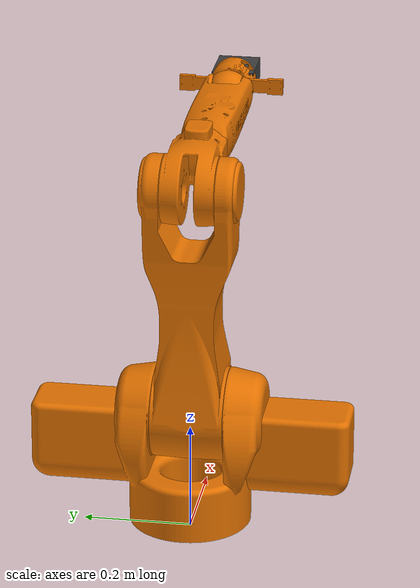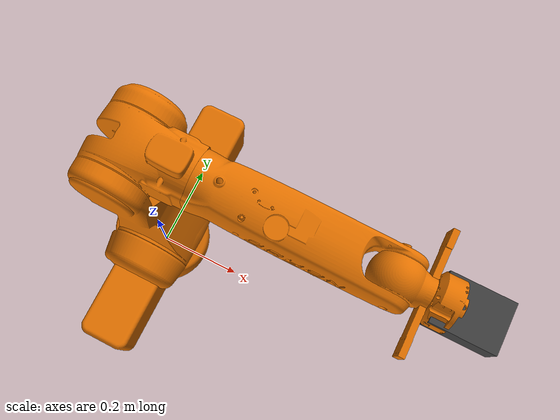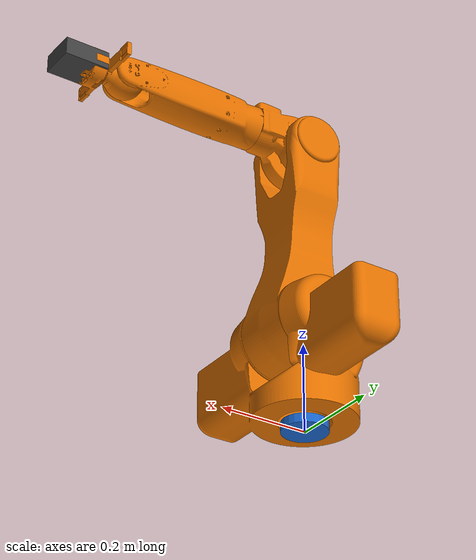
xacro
<?xml version="1.0"?>
<robot xmlns:xacro="http://www.ros.org/wiki/xacro" name="neuroneimitationcarote">
    <xacro:arg name="initial_positions_file" default="initial_positions.yaml" />

    <!-- Import neuroneimitationcarote urdf file -->
    <xacro:include filename="$(find neuroneimitationcarote_description)/urdf/robot.urdf.xacro" />

    <!-- Import control_xacro -->
    <xacro:include filename="neuroneimitationcarote.ros2_control.xacro" />

    <xacro:neuroneimitationcarote_ros2_control name="FakeSystem" initial_positions_file="$(arg initial_positions_file)"/>

</robot>

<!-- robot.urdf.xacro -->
<robot name="neuroneimitationcarote" xmlns:xacro="http://www.ros.org/wiki/xacro">

  <material name="dark_grey">
    <color rgba="0.25 0.25 0.25 1.0"/>
  </material>
  <material name="orange">
    <color rgba="0.9 0.45 0.0 1.0"/>
  </material>
  <material name="blue">
    <color rgba="0.1 0.4 0.8 1.0"/>
  </material>

<!-- Dummy world link requis par KDL -->
<link name="world"/>
<joint name="world_to_base" type="fixed">
  <parent link="world"/>
  <child  link="base_link"/>
  <origin xyz="0 0 0" rpy="0 0 0"/>
</joint>

  <!-- BASE_LINK -->
  <link name="base_link">
    <visual>
      <origin xyz="0 0 0.01" rpy="0 0 0"/>
      <geometry><cylinder radius="0.05" length="0.02"/></geometry>
      <material name="blue"/>
    </visual>
    <collision>
      <origin xyz="0 0 0.01" rpy="0 0 0"/>
      <geometry><cylinder radius="0.05" length="0.02"/></geometry>
    </collision>
  </link>

  <!-- JOINT 1 -->
  <joint name="joint_1" type="revolute">
    <parent link="base_link"/>
    <child  link="link_1"/>
    <origin xyz="0 0 0.02" rpy="0 0 0"/>
    <axis xyz="0 0 1"/>
    <limit lower="-3.14159" upper="3.14159" effort="10.0" velocity="1.0"/>
    <dynamics damping="0.5" friction="0.1" acceleration="1.0"/>
  </joint>

  <!-- LINK 1 -->
  <link name="link_1">
    <visual>
      <origin xyz="0 0 0" rpy="0 0 0"/>
      <geometry>
        <mesh filename="package://neuroneimitationcarote_description/meshes/visual/section1_maillage.stl"
              scale="0.001 0.001 0.001"/>
      </geometry>
      <material name="orange"/>
    </visual>
    <collision>
      <origin xyz="0 0 0.082" rpy="0 0 0"/>
      <geometry><cylinder radius="0.120" length="0.16"/></geometry>
    </collision>
    <collision>
      <origin xyz="0.024 0 0.19" rpy="1.5707 0 0"/>
      <geometry><cylinder radius="0.10" length="0.28"/></geometry>
    </collision>
    <collision>
      <origin xyz="0.02 0 0.140" rpy="0 0 0"/>
      <geometry><box size="0.120 0.600 0.17"/></geometry>
    </collision>
    <inertial>
      <mass value="1.5"/>
      <origin xyz="0.013 0 0.129" rpy="0 0 0"/>
      <inertia ixx="0.010" ixy="0" ixz="0" iyy="0.010" iyz="0" izz="0.005"/>
    </inertial>
  </link>

  <!-- JOINT 2 -->
  <joint name="joint_2" type="revolute">
    <parent link="link_1"/>
    <child  link="link_2"/>
    <origin xyz="0.024031 0 0.202992" rpy="0 0 0"/>
    <axis xyz="0 1 0"/>
    <limit lower="-1.0" upper="1.2" effort="20.0" velocity="1.0"/>
    <dynamics damping="0.5" friction="0.1" acceleration="1.0"/>
  </joint>

  <!-- LINK 2 -->
  <link name="link_2">
    <visual>
      <origin xyz="0 0 0" rpy="0 0 0"/>
      <geometry>
        <mesh filename="package://neuroneimitationcarote_description/meshes/visual/section2_maillage.stl"
              scale="0.001 0.001 0.001"/>
      </geometry>
      <material name="orange"/>
    </visual>
    <collision>
      <origin xyz="-0.017 0 0.22" rpy="0 0 0"/>
      <geometry><cylinder radius="0.090" length="0.31"/></geometry>
    </collision>
    <collision>
      <origin xyz="-0.015 0 0.45" rpy="1.5707 0 0"/>
      <geometry><cylinder radius="0.098" length="0.18"/></geometry>
    </collision>
    <inertial>
      <mass value="1.0"/>
      <origin xyz="-0.010 0 0.205" rpy="0 0 0"/>
      <inertia ixx="0.020" ixy="0" ixz="0" iyy="0.020" iyz="0" izz="0.002"/>
    </inertial>
  </link>

  <!-- JOINT 3 -->
  <joint name="joint_3" type="revolute">
    <parent link="link_2"/>
    <child  link="link_3"/>
    <origin xyz="-0.015224 0 0.441653" rpy="0 0 0"/>
    <axis xyz="0 1 0"/>
    <limit lower="-3.0" upper="0.65" effort="15.0" velocity="1.0"/>
    <dynamics damping="0.5" friction="0.1" acceleration="1.0"/>
  </joint>

  <!-- LINK 3 — pas de collision intentionnellement -->
  <link name="link_3">
    <visual>
      <origin xyz="0 0 0" rpy="0 0 0"/>
      <geometry>
        <mesh filename="package://neuroneimitationcarote_description/meshes/visual/section3_maillage.stl"
              scale="0.001 0.001 0.001"/>
      </geometry>
      <material name="orange"/>
    </visual>
    <collision>
      <origin xyz="0.08 0 0.03" rpy="0 1.5708 0"/>
      <geometry><cylinder radius="0.058" length="0.080"/></geometry>
    </collision>
    <inertial>
      <mass value="0.5"/>
      <origin xyz="0.028 0 0.014" rpy="0 0 0"/>
      <inertia ixx="0.001" ixy="0" ixz="0" iyy="0.002" iyz="0" izz="0.002"/>
    </inertial>
  </link>

  <!-- JOINT 4 -->
  <joint name="joint_4" type="revolute">
    <parent link="link_3"/>
    <child  link="link_4"/>
    <origin xyz="0.119473 0 0.029716" rpy="0 0 0"/>
    <axis xyz="1 0 0"/>
    <limit lower="-3.1416" upper="3.1416" effort="5.0" velocity="2.0"/>
    <dynamics damping="0.2" friction="0.05" acceleration="2.0"/>
  </joint>

  <!-- LINK 4 -->
  <link name="link_4">
    <visual>
      <origin xyz="-3.94046 0.0 0.0" rpy="0 0 0"/>
      <geometry>
        <mesh filename="package://neuroneimitationcarote_description/meshes/visual/section4_maillage.stl"
              scale="0.001 0.001 0.001"/>
      </geometry>
      <material name="orange"/>
    </visual>
    <collision>
      <origin xyz="0.14 0 0" rpy="0 1.5708 0"/>
      <geometry><cylinder radius="0.058" length="0.290"/></geometry>
    </collision>
    <inertial>
      <mass value="0.4"/>
      <origin xyz="0.178 0 0" rpy="0 0 0"/>
      <inertia ixx="0.0003" ixy="0" ixz="0" iyy="0.004" iyz="0" izz="0.004"/>
    </inertial>
  </link>

  <!-- JOINT 5 -->
  <joint name="joint_5" type="revolute">
    <parent link="link_4"/>
    <child  link="link_5"/>
    <origin xyz="0.321516 0 0" rpy="0 0 0"/>
    <axis xyz="0 1 0"/>
    <limit lower="-1.6" upper="1.6" effort="5.0" velocity="2.0"/>
    <dynamics damping="0.2" friction="0.05" acceleration="2.0"/>
  </joint>

  <!-- LINK 5 -->
  <link name="link_5">
    <visual>
      <origin xyz="0 0 0" rpy="0 3.14 0"/>
      <geometry>
        <mesh filename="package://neuroneimitationcarote_description/meshes/visual/section5_maillage.stl"
              scale="0.001 0.001 0.001"/>
      </geometry>
      <material name="orange"/>
    </visual>
    <collision>
      <origin xyz="0.05 0 0" rpy="0 0 0"/>
      <geometry><box size="0.023 0.22 0.04"/></geometry>
    </collision>
    <collision>
      <origin xyz="0.04 0 0" rpy="0 1.5708 0"/>
      <geometry><cylinder radius="0.045" length="0.095"/></geometry>
    </collision>
    <collision>
      <origin xyz="-0.005 0 0" rpy="1.5708 0 0"/>
      <geometry><cylinder radius="0.038" length="0.098"/></geometry>
    </collision>
    <inertial>
      <mass value="0.2"/>
      <origin xyz="-0.048 0 0" rpy="0 0 0"/>
      <inertia ixx="0.0001" ixy="0" ixz="0" iyy="0.0001" iyz="0" izz="0.0001"/>
    </inertial>
  </link>

  <!-- PINCE — boîte fixe placeholder -->
  <joint name="joint_gripper" type="fixed">
    <parent link="link_5"/>
    <child  link="link_gripper"/>
    <origin xyz="0.06 0 0" rpy="0 0 0"/>
  </joint>

  <link name="link_gripper">
    <visual>
      <origin xyz="0.05 0 0" rpy="0 0 0"/>
      <geometry>
        <box size="0.10 0.08 0.04"/>
      </geometry>
      <material name="dark_grey"/>
    </visual>
    <collision>
      <origin xyz="0.05 0 0" rpy="0 0 0"/>
      <geometry>
        <box size="0.10 0.08 0.04"/>
      </geometry>
    </collision>
    <inertial>
      <mass value="0.15"/>
      <origin xyz="0.05 0 0" rpy="0 0 0"/>
      <inertia ixx="0.0001" ixy="0" ixz="0"
               iyy="0.0001" iyz="0"
               izz="0.0001"/>
    </inertial>
  </link>

  <!-- TCP fixe pour MoveIt -->
  <joint name="joint_tcp" type="fixed">
    <parent link="link_gripper"/>
    <child  link="tcp"/>
    <origin xyz="0.10 0 0" rpy="0 0 0"/>
  </joint>
  <link name="tcp"/>

</robot>
